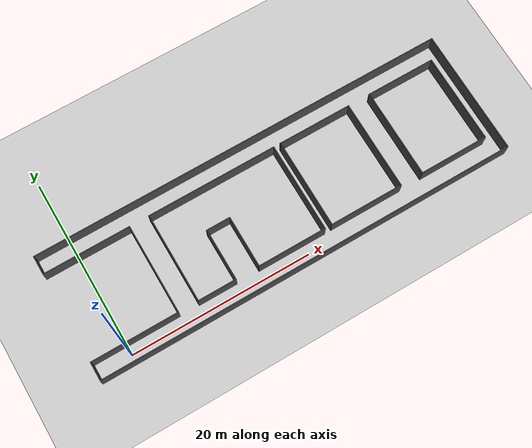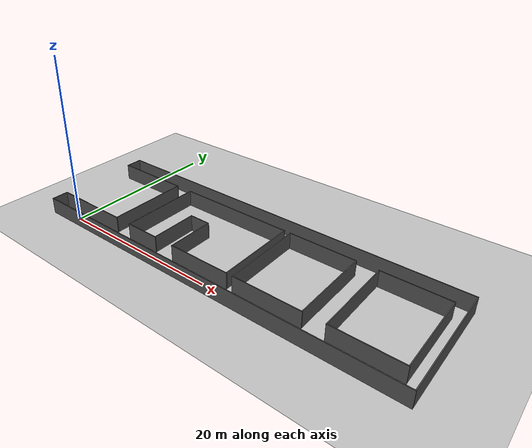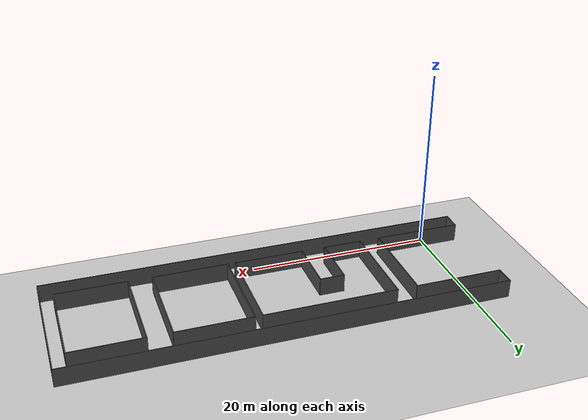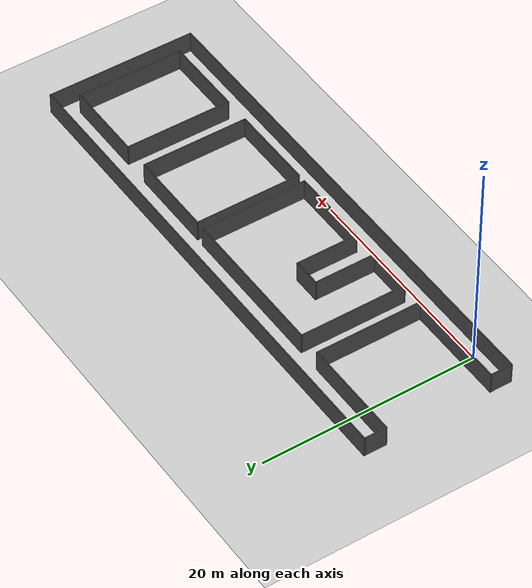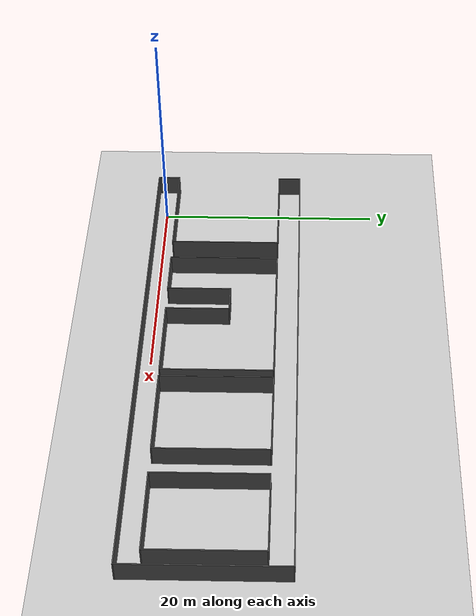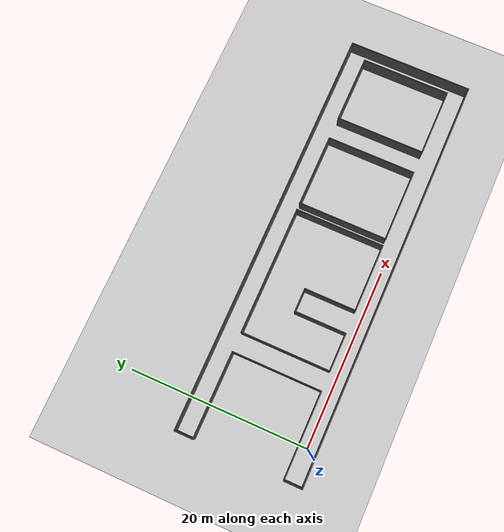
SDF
<?xml version="1.0" ?>
<sdf version="1.6">
  <world name="edit_map_world">

    <include>
      <uri>model://sun</uri>
    </include>

    <include>
      <uri>model://ground_plane</uri>
    </include>

    <physics type="ode">
      <real_time_update_rate>1000.0</real_time_update_rate>
      <max_step_size>0.001</max_step_size>
      <real_time_factor>1</real_time_factor>
      <ode>
        <solver>
          <type>quick</type>
          <iters>150</iters>
          <precon_iters>0</precon_iters>
          <sor>1.400000</sor>
          <use_dynamic_moi_rescaling>1</use_dynamic_moi_rescaling>
        </solver>
        <constraints>
          <cfm>0.00001</cfm>
          <erp>0.2</erp>
          <contact_max_correcting_vel>2000.000000</contact_max_correcting_vel>
          <contact_surface_layer>0.01000</contact_surface_layer>
        </constraints>
      </ode>
    </physics>

    <model name="walls">
      <static>true</static>
      <link name="link">
        <visual name="v0">
          <pose>19.5750 13.0250 1.0000 0 0 0</pose>
          <geometry><box><size>46.6000 0.1000 2.0000</size></box></geometry>
          <material>
            <ambient>0.3 0.3 0.3 1</ambient>
            <diffuse>0.3 0.3 0.3 1</diffuse>
          </material>
        </visual>
        <visual name="v1">
          <pose>-3.6750 12.0000 1.0000 0 0 0</pose>
          <geometry><box><size>0.1000 1.9500 2.0000</size></box></geometry>
          <material>
            <ambient>0.3 0.3 0.3 1</ambient>
            <diffuse>0.3 0.3 0.3 1</diffuse>
          </material>
        </visual>
        <visual name="v2">
          <pose>27.2250 10.9750 1.0000 0 0 0</pose>
          <geometry><box><size>8.2000 0.1000 2.0000</size></box></geometry>
          <material>
            <ambient>0.3 0.3 0.3 1</ambient>
            <diffuse>0.3 0.3 0.3 1</diffuse>
          </material>
        </visual>
        <visual name="v3">
          <pose>37.6250 10.9750 1.0000 0 0 0</pose>
          <geometry><box><size>7.7000 0.1000 2.0000</size></box></geometry>
          <material>
            <ambient>0.3 0.3 0.3 1</ambient>
            <diffuse>0.3 0.3 0.3 1</diffuse>
          </material>
        </visual>
        <visual name="v4">
          <pose>15.2000 10.9750 1.0000 0 0 0</pose>
          <geometry><box><size>14.4500 0.1000 2.0000</size></box></geometry>
          <material>
            <ambient>0.3 0.3 0.3 1</ambient>
            <diffuse>0.3 0.3 0.3 1</diffuse>
          </material>
        </visual>
        <visual name="v5">
          <pose>1.0750 10.9750 1.0000 0 0 0</pose>
          <geometry><box><size>9.6000 0.1000 2.0000</size></box></geometry>
          <material>
            <ambient>0.3 0.3 0.3 1</ambient>
            <diffuse>0.3 0.3 0.3 1</diffuse>
          </material>
        </visual>
        <visual name="v6">
          <pose>13.5250 6.7750 1.0000 0 0 0</pose>
          <geometry><box><size>2.7000 0.1000 2.0000</size></box></geometry>
          <material>
            <ambient>0.3 0.3 0.3 1</ambient>
            <diffuse>0.3 0.3 0.3 1</diffuse>
          </material>
        </visual>
        <visual name="v7">
          <pose>22.3750 6.0000 1.0000 0 0 0</pose>
          <geometry><box><size>0.1000 9.8500 2.0000</size></box></geometry>
          <material>
            <ambient>0.3 0.3 0.3 1</ambient>
            <diffuse>0.3 0.3 0.3 1</diffuse>
          </material>
        </visual>
        <visual name="v8">
          <pose>33.8250 6.0000 1.0000 0 0 0</pose>
          <geometry><box><size>0.1000 9.8500 2.0000</size></box></geometry>
          <material>
            <ambient>0.3 0.3 0.3 1</ambient>
            <diffuse>0.3 0.3 0.3 1</diffuse>
          </material>
        </visual>
        <visual name="v9">
          <pose>5.8250 6.0000 1.0000 0 0 0</pose>
          <geometry><box><size>0.1000 9.8500 2.0000</size></box></geometry>
          <material>
            <ambient>0.3 0.3 0.3 1</ambient>
            <diffuse>0.3 0.3 0.3 1</diffuse>
          </material>
        </visual>
        <visual name="v10">
          <pose>31.2750 6.0000 1.0000 0 0 0</pose>
          <geometry><box><size>0.1000 9.8500 2.0000</size></box></geometry>
          <material>
            <ambient>0.3 0.3 0.3 1</ambient>
            <diffuse>0.3 0.3 0.3 1</diffuse>
          </material>
        </visual>
        <visual name="v11">
          <pose>8.0250 6.0000 1.0000 0 0 0</pose>
          <geometry><box><size>0.1000 9.8500 2.0000</size></box></geometry>
          <material>
            <ambient>0.3 0.3 0.3 1</ambient>
            <diffuse>0.3 0.3 0.3 1</diffuse>
          </material>
        </visual>
        <visual name="v12">
          <pose>41.4250 6.0000 1.0000 0 0 0</pose>
          <geometry><box><size>0.1000 9.8500 2.0000</size></box></geometry>
          <material>
            <ambient>0.3 0.3 0.3 1</ambient>
            <diffuse>0.3 0.3 0.3 1</diffuse>
          </material>
        </visual>
        <visual name="v13">
          <pose>23.1750 6.0000 1.0000 0 0 0</pose>
          <geometry><box><size>0.1000 9.8500 2.0000</size></box></geometry>
          <material>
            <ambient>0.3 0.3 0.3 1</ambient>
            <diffuse>0.3 0.3 0.3 1</diffuse>
          </material>
        </visual>
        <visual name="v14">
          <pose>12.2250 3.9000 1.0000 0 0 0</pose>
          <geometry><box><size>0.1000 5.6500 2.0000</size></box></geometry>
          <material>
            <ambient>0.3 0.3 0.3 1</ambient>
            <diffuse>0.3 0.3 0.3 1</diffuse>
          </material>
        </visual>
        <visual name="v15">
          <pose>14.8250 3.9000 1.0000 0 0 0</pose>
          <geometry><box><size>0.1000 5.6500 2.0000</size></box></geometry>
          <material>
            <ambient>0.3 0.3 0.3 1</ambient>
            <diffuse>0.3 0.3 0.3 1</diffuse>
          </material>
        </visual>
        <visual name="v16">
          <pose>27.2250 1.0250 1.0000 0 0 0</pose>
          <geometry><box><size>8.2000 0.1000 2.0000</size></box></geometry>
          <material>
            <ambient>0.3 0.3 0.3 1</ambient>
            <diffuse>0.3 0.3 0.3 1</diffuse>
          </material>
        </visual>
        <visual name="v17">
          <pose>10.1250 1.0250 1.0000 0 0 0</pose>
          <geometry><box><size>4.3000 0.1000 2.0000</size></box></geometry>
          <material>
            <ambient>0.3 0.3 0.3 1</ambient>
            <diffuse>0.3 0.3 0.3 1</diffuse>
          </material>
        </visual>
        <visual name="v18">
          <pose>37.6250 1.0250 1.0000 0 0 0</pose>
          <geometry><box><size>7.7000 0.1000 2.0000</size></box></geometry>
          <material>
            <ambient>0.3 0.3 0.3 1</ambient>
            <diffuse>0.3 0.3 0.3 1</diffuse>
          </material>
        </visual>
        <visual name="v19">
          <pose>1.0750 1.0250 1.0000 0 0 0</pose>
          <geometry><box><size>9.6000 0.1000 2.0000</size></box></geometry>
          <material>
            <ambient>0.3 0.3 0.3 1</ambient>
            <diffuse>0.3 0.3 0.3 1</diffuse>
          </material>
        </visual>
        <visual name="v20">
          <pose>18.6000 1.0250 1.0000 0 0 0</pose>
          <geometry><box><size>7.6500 0.1000 2.0000</size></box></geometry>
          <material>
            <ambient>0.3 0.3 0.3 1</ambient>
            <diffuse>0.3 0.3 0.3 1</diffuse>
          </material>
        </visual>
        <visual name="v21">
          <pose>42.8250 6.0250 1.0000 0 0 0</pose>
          <geometry><box><size>0.1000 13.9000 2.0000</size></box></geometry>
          <material>
            <ambient>0.3 0.3 0.3 1</ambient>
            <diffuse>0.3 0.3 0.3 1</diffuse>
          </material>
        </visual>
        <visual name="v22">
          <pose>-3.6750 0.0250 1.0000 0 0 0</pose>
          <geometry><box><size>0.1000 1.9000 2.0000</size></box></geometry>
          <material>
            <ambient>0.3 0.3 0.3 1</ambient>
            <diffuse>0.3 0.3 0.3 1</diffuse>
          </material>
        </visual>
        <visual name="v23">
          <pose>19.5750 -0.9750 1.0000 0 0 0</pose>
          <geometry><box><size>46.6000 0.1000 2.0000</size></box></geometry>
          <material>
            <ambient>0.3 0.3 0.3 1</ambient>
            <diffuse>0.3 0.3 0.3 1</diffuse>
          </material>
        </visual>
        <collision name="c0">
          <pose>19.5750 13.0250 1.0000 0 0 0</pose>
          <geometry><box><size>46.6000 0.1000 2.0000</size></box></geometry>
        </collision>
        <collision name="c1">
          <pose>-3.6750 12.0000 1.0000 0 0 0</pose>
          <geometry><box><size>0.1000 1.9500 2.0000</size></box></geometry>
        </collision>
        <collision name="c2">
          <pose>27.2250 10.9750 1.0000 0 0 0</pose>
          <geometry><box><size>8.2000 0.1000 2.0000</size></box></geometry>
        </collision>
        <collision name="c3">
          <pose>37.6250 10.9750 1.0000 0 0 0</pose>
          <geometry><box><size>7.7000 0.1000 2.0000</size></box></geometry>
        </collision>
        <collision name="c4">
          <pose>15.2000 10.9750 1.0000 0 0 0</pose>
          <geometry><box><size>14.4500 0.1000 2.0000</size></box></geometry>
        </collision>
        <collision name="c5">
          <pose>1.0750 10.9750 1.0000 0 0 0</pose>
          <geometry><box><size>9.6000 0.1000 2.0000</size></box></geometry>
        </collision>
        <collision name="c6">
          <pose>13.5250 6.7750 1.0000 0 0 0</pose>
          <geometry><box><size>2.7000 0.1000 2.0000</size></box></geometry>
        </collision>
        <collision name="c7">
          <pose>22.3750 6.0000 1.0000 0 0 0</pose>
          <geometry><box><size>0.1000 9.8500 2.0000</size></box></geometry>
        </collision>
        <collision name="c8">
          <pose>33.8250 6.0000 1.0000 0 0 0</pose>
          <geometry><box><size>0.1000 9.8500 2.0000</size></box></geometry>
        </collision>
        <collision name="c9">
          <pose>5.8250 6.0000 1.0000 0 0 0</pose>
          <geometry><box><size>0.1000 9.8500 2.0000</size></box></geometry>
        </collision>
        <collision name="c10">
          <pose>31.2750 6.0000 1.0000 0 0 0</pose>
          <geometry><box><size>0.1000 9.8500 2.0000</size></box></geometry>
        </collision>
        <collision name="c11">
          <pose>8.0250 6.0000 1.0000 0 0 0</pose>
          <geometry><box><size>0.1000 9.8500 2.0000</size></box></geometry>
        </collision>
        <collision name="c12">
          <pose>41.4250 6.0000 1.0000 0 0 0</pose>
          <geometry><box><size>0.1000 9.8500 2.0000</size></box></geometry>
        </collision>
        <collision name="c13">
          <pose>23.1750 6.0000 1.0000 0 0 0</pose>
          <geometry><box><size>0.1000 9.8500 2.0000</size></box></geometry>
        </collision>
        <collision name="c14">
          <pose>12.2250 3.9000 1.0000 0 0 0</pose>
          <geometry><box><size>0.1000 5.6500 2.0000</size></box></geometry>
        </collision>
        <collision name="c15">
          <pose>14.8250 3.9000 1.0000 0 0 0</pose>
          <geometry><box><size>0.1000 5.6500 2.0000</size></box></geometry>
        </collision>
        <collision name="c16">
          <pose>27.2250 1.0250 1.0000 0 0 0</pose>
          <geometry><box><size>8.2000 0.1000 2.0000</size></box></geometry>
        </collision>
        <collision name="c17">
          <pose>10.1250 1.0250 1.0000 0 0 0</pose>
          <geometry><box><size>4.3000 0.1000 2.0000</size></box></geometry>
        </collision>
        <collision name="c18">
          <pose>37.6250 1.0250 1.0000 0 0 0</pose>
          <geometry><box><size>7.7000 0.1000 2.0000</size></box></geometry>
        </collision>
        <collision name="c19">
          <pose>1.0750 1.0250 1.0000 0 0 0</pose>
          <geometry><box><size>9.6000 0.1000 2.0000</size></box></geometry>
        </collision>
        <collision name="c20">
          <pose>18.6000 1.0250 1.0000 0 0 0</pose>
          <geometry><box><size>7.6500 0.1000 2.0000</size></box></geometry>
        </collision>
        <collision name="c21">
          <pose>42.8250 6.0250 1.0000 0 0 0</pose>
          <geometry><box><size>0.1000 13.9000 2.0000</size></box></geometry>
        </collision>
        <collision name="c22">
          <pose>-3.6750 0.0250 1.0000 0 0 0</pose>
          <geometry><box><size>0.1000 1.9000 2.0000</size></box></geometry>
        </collision>
        <collision name="c23">
          <pose>19.5750 -0.9750 1.0000 0 0 0</pose>
          <geometry><box><size>46.6000 0.1000 2.0000</size></box></geometry>
        </collision>
      </link>
    </model>

  </world>
</sdf>
